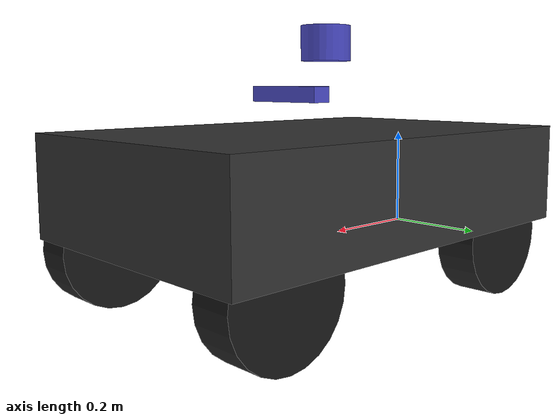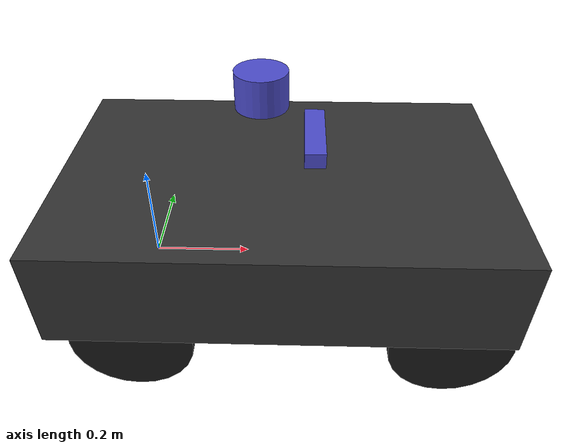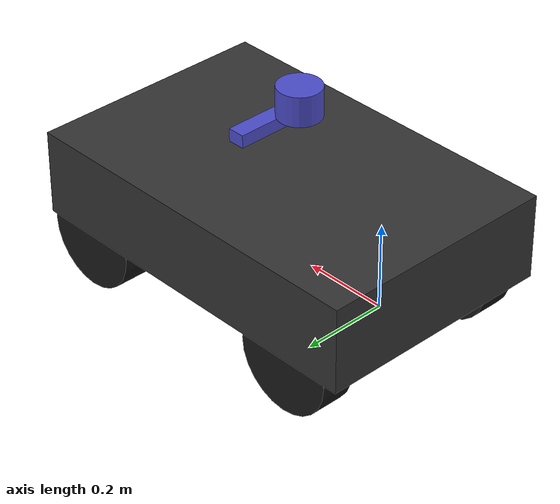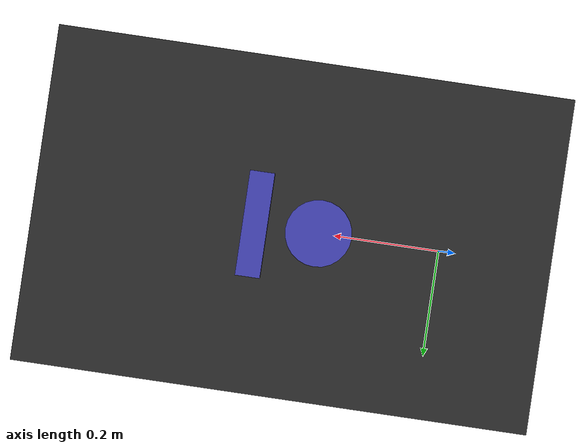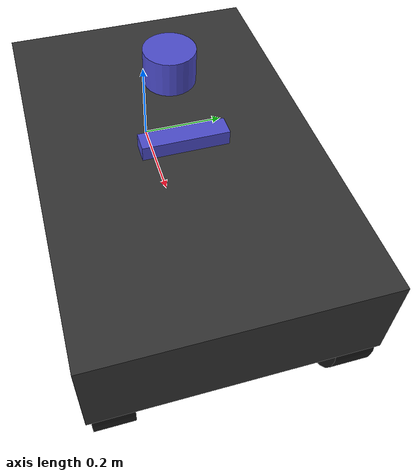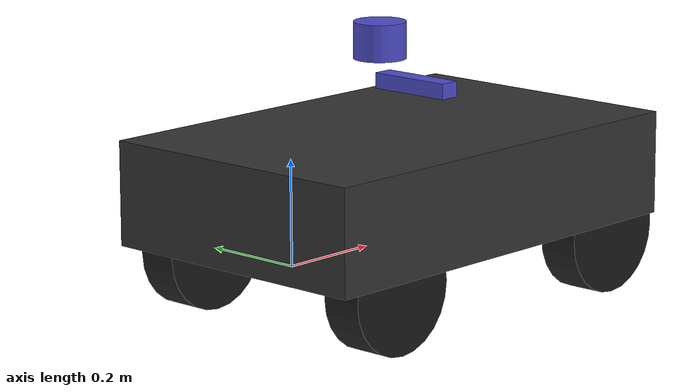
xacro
<?xml version="1.0"?>
<robot xmlns:xacro="http://www.ros.org/wiki/xacro" name="autoracer">
  <xacro:arg name="prefix" default=""/>
  <xacro:property name="prefix" value="$(arg prefix)"/>

  <!-- ==================== 参数定义 ==================== -->
  <!-- 底盘尺寸 -->
  <xacro:property name="chassis_length" value="0.8775"/>
  <xacro:property name="chassis_width" value="0.57"/>
  <xacro:property name="chassis_height" value="0.20"/>

  <!-- Ackermann 运动学参数 -->
  <xacro:property name="wheelbase" value="0.60"/>
  <xacro:property name="track_width" value="0.47"/>
  <xacro:property name="wheel_radius" value="0.1175"/>
  <xacro:property name="wheel_width" value="0.08"/>
  <xacro:property name="max_steering_angle" value="0.262"/>

  <!-- 底盘布局 (base_link 在后轴中心) -->
  <xacro:property name="front_axle_to_front" value="0.1175"/>
  <xacro:property name="rear_axle_to_rear" value="0.16"/>

  <!-- base_link 高度 (轴心离地高度) -->
  <xacro:property name="axle_height" value="${wheel_radius}"/>

  <!-- 底盘中心相对 base_link 的 X 偏移 -->
  <!-- base_link 在后轴，底盘几何中心在 X = (wheelbase - rear_axle_to_rear + front_axle_to_front) / 2 -->
  <xacro:property name="chassis_x_offset" value="${(wheelbase - rear_axle_to_rear + front_axle_to_front) / 2.0}"/>

  <!-- 底盘底面相对 base_link 的 Z 偏移 (底盘底面在轴心上方一小段) -->
  <xacro:property name="chassis_z_offset" value="0.02"/>

  <!-- 车辆质量 (估计值) -->
  <xacro:property name="chassis_mass" value="8.0"/>
  <xacro:property name="wheel_mass" value="0.5"/>
  <xacro:property name="steering_mass" value="0.1"/>

  <!-- 传感器位置 (相对 base_link) -->
  <xacro:property name="lidar_x" value="0.24"/>
  <xacro:property name="lidar_z" value="0.39"/>
  <xacro:property name="lidar_yaw" value="-1.5708"/>

  <xacro:property name="zed_x" value="0.34"/>
  <xacro:property name="zed_z" value="0.29"/>

  <!-- ==================== 材质定义 ==================== -->
  <material name="chassis_color">
    <color rgba="0.2 0.2 0.2 1"/>
  </material>
  <material name="wheel_color">
    <color rgba="0.1 0.1 0.1 1"/>
  </material>
  <material name="steering_color">
    <color rgba="0.5 0.5 0.5 1"/>
  </material>
  <material name="sensor_color">
    <color rgba="0.3 0.3 0.8 1"/>
  </material>

  <!-- ==================== 惯性矩阵宏 ==================== -->
  <!-- 长方体惯性 -->
  <xacro:macro name="box_inertia" params="m x y z">
    <inertia ixx="${m*(y*y+z*z)/12.0}" ixy="0" ixz="0"
             iyy="${m*(x*x+z*z)/12.0}" iyz="0"
             izz="${m*(x*x+y*y)/12.0}"/>
  </xacro:macro>

  <!-- 圆柱体惯性 (绕 Y 轴旋转的轮子) -->
  <xacro:macro name="cylinder_inertia" params="m r h">
    <inertia ixx="${m*(3*r*r+h*h)/12.0}" ixy="0" ixz="0"
             iyy="${m*r*r/2.0}" iyz="0"
             izz="${m*(3*r*r+h*h)/12.0}"/>
  </xacro:macro>

  <!-- ==================== 车轮宏 ==================== -->
  <xacro:macro name="wheel_link" params="name">
    <link name="${name}">
      <inertial>
        <origin xyz="0 0 0" rpy="${pi/2} 0 0"/>
        <mass value="${wheel_mass}"/>
        <xacro:cylinder_inertia m="${wheel_mass}" r="${wheel_radius}" h="${wheel_width}"/>
      </inertial>
      <visual>
        <origin xyz="0 0 0" rpy="${pi/2} 0 0"/>
        <geometry>
          <cylinder radius="${wheel_radius}" length="${wheel_width}"/>
        </geometry>
        <material name="wheel_color"/>
      </visual>
      <collision>
        <origin xyz="0 0 0" rpy="${pi/2} 0 0"/>
        <geometry>
          <cylinder radius="${wheel_radius}" length="${wheel_width}"/>
        </geometry>
      </collision>
    </link>
  </xacro:macro>

  <!-- ==================== base_link (后轴中心，轴高度) ==================== -->
  <link name="${prefix}base_link">
    <inertial>
      <origin xyz="${chassis_x_offset} 0 ${chassis_z_offset + chassis_height/2.0}" rpy="0 0 0"/>
      <mass value="${chassis_mass}"/>
      <xacro:box_inertia m="${chassis_mass}" x="${chassis_length}" y="${chassis_width}" z="${chassis_height}"/>
    </inertial>
    <visual>
      <origin xyz="${chassis_x_offset} 0 ${chassis_z_offset + chassis_height/2.0}" rpy="0 0 0"/>
      <geometry>
        <box size="${chassis_length} ${chassis_width} ${chassis_height}"/>
      </geometry>
      <material name="chassis_color"/>
    </visual>
    <collision>
      <origin xyz="${chassis_x_offset} 0 ${chassis_z_offset + chassis_height/2.0}" rpy="0 0 0"/>
      <geometry>
        <box size="${chassis_length} ${chassis_width} ${chassis_height}"/>
      </geometry>
    </collision>
  </link>

  <!-- ==================== 后轮 (continuous joints) ==================== -->
  <!-- 左后轮 -->
  <xacro:wheel_link name="${prefix}rear_left_wheel_link"/>
  <joint name="${prefix}rear_left_wheel_joint" type="continuous">
    <origin xyz="0 ${track_width/2.0} 0" rpy="0 0 0"/>
    <parent link="${prefix}base_link"/>
    <child link="${prefix}rear_left_wheel_link"/>
    <axis xyz="0 1 0"/>
  </joint>

  <!-- 右后轮 -->
  <xacro:wheel_link name="${prefix}rear_right_wheel_link"/>
  <joint name="${prefix}rear_right_wheel_joint" type="continuous">
    <origin xyz="0 ${-track_width/2.0} 0" rpy="0 0 0"/>
    <parent link="${prefix}base_link"/>
    <child link="${prefix}rear_right_wheel_link"/>
    <axis xyz="0 1 0"/>
  </joint>

  <!-- ==================== 前轮转向 (revolute + continuous) ==================== -->
  <!-- 左前转向节 -->
  <link name="${prefix}front_left_steering_link">
    <inertial>
      <origin xyz="0 0 0" rpy="0 0 0"/>
      <mass value="${steering_mass}"/>
      <xacro:box_inertia m="${steering_mass}" x="0.05" y="0.05" z="0.05"/>
    </inertial>
    <visual>
      <origin xyz="0 0 0" rpy="0 0 0"/>
      <geometry>
        <cylinder radius="0.02" length="0.05"/>
      </geometry>
      <material name="steering_color"/>
    </visual>
  </link>
  <joint name="${prefix}front_left_steering_joint" type="revolute">
    <origin xyz="${wheelbase} ${track_width/2.0} 0" rpy="0 0 0"/>
    <parent link="${prefix}base_link"/>
    <child link="${prefix}front_left_steering_link"/>
    <axis xyz="0 0 1"/>
    <limit lower="${-max_steering_angle}" upper="${max_steering_angle}" effort="10" velocity="1.0"/>
  </joint>

  <!-- 左前轮 -->
  <xacro:wheel_link name="${prefix}front_left_wheel_link"/>
  <joint name="${prefix}front_left_wheel_joint" type="continuous">
    <origin xyz="0 0 0" rpy="0 0 0"/>
    <parent link="${prefix}front_left_steering_link"/>
    <child link="${prefix}front_left_wheel_link"/>
    <axis xyz="0 1 0"/>
  </joint>

  <!-- 右前转向节 -->
  <link name="${prefix}front_right_steering_link">
    <inertial>
      <origin xyz="0 0 0" rpy="0 0 0"/>
      <mass value="${steering_mass}"/>
      <xacro:box_inertia m="${steering_mass}" x="0.05" y="0.05" z="0.05"/>
    </inertial>
    <visual>
      <origin xyz="0 0 0" rpy="0 0 0"/>
      <geometry>
        <cylinder radius="0.02" length="0.05"/>
      </geometry>
      <material name="steering_color"/>
    </visual>
  </link>
  <joint name="${prefix}front_right_steering_joint" type="revolute">
    <origin xyz="${wheelbase} ${-track_width/2.0} 0" rpy="0 0 0"/>
    <parent link="${prefix}base_link"/>
    <child link="${prefix}front_right_steering_link"/>
    <axis xyz="0 0 1"/>
    <limit lower="${-max_steering_angle}" upper="${max_steering_angle}" effort="10" velocity="1.0"/>
  </joint>

  <!-- 右前轮 -->
  <xacro:wheel_link name="${prefix}front_right_wheel_link"/>
  <joint name="${prefix}front_right_wheel_joint" type="continuous">
    <origin xyz="0 0 0" rpy="0 0 0"/>
    <parent link="${prefix}front_right_steering_link"/>
    <child link="${prefix}front_right_wheel_link"/>
    <axis xyz="0 1 0"/>
  </joint>

  <!-- ==================== 传感器 link ==================== -->
  <!-- LiDAR C32 (固定在 base_link 上) -->
  <link name="${prefix}laser">
    <inertial>
      <origin xyz="0 0 0" rpy="0 0 0"/>
      <mass value="0.5"/>
      <xacro:cylinder_inertia m="0.5" r="0.05" h="0.07"/>
    </inertial>
    <visual>
      <origin xyz="0 0 0" rpy="0 0 0"/>
      <geometry>
        <cylinder radius="0.05" length="0.07"/>
      </geometry>
      <material name="sensor_color"/>
    </visual>
    <collision>
      <origin xyz="0 0 0" rpy="0 0 0"/>
      <geometry>
        <cylinder radius="0.05" length="0.07"/>
      </geometry>
    </collision>
  </link>
  <joint name="${prefix}laser_joint" type="fixed">
    <origin xyz="${lidar_x} 0 ${lidar_z}" rpy="0 0 ${lidar_yaw}"/>
    <parent link="${prefix}base_link"/>
    <child link="${prefix}laser"/>
  </joint>

  <!-- ZED X 深度相机 (固定在 base_link 上) -->
  <link name="${prefix}zed_camera_link">
    <inertial>
      <origin xyz="0 0 0" rpy="0 0 0"/>
      <mass value="0.2"/>
      <xacro:box_inertia m="0.2" x="0.04" y="0.17" z="0.03"/>
    </inertial>
    <visual>
      <origin xyz="0 0 0" rpy="0 0 0"/>
      <geometry>
        <box size="0.04 0.17 0.03"/>
      </geometry>
      <material name="sensor_color"/>
    </visual>
    <collision>
      <origin xyz="0 0 0" rpy="0 0 0"/>
      <geometry>
        <box size="0.04 0.17 0.03"/>
      </geometry>
    </collision>
  </link>
  <joint name="${prefix}zed_camera_joint" type="fixed">
    <origin xyz="${zed_x} 0 ${zed_z}" rpy="0 0 0"/>
    <parent link="${prefix}base_link"/>
    <child link="${prefix}zed_camera_link"/>
  </joint>

</robot>
